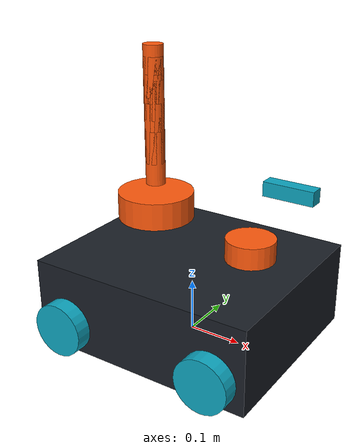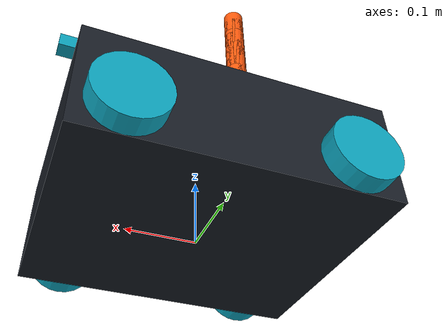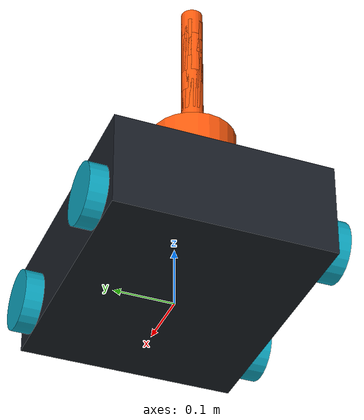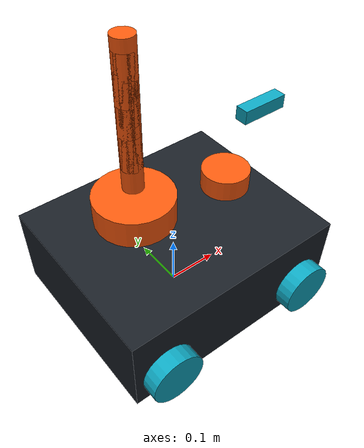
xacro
<?xml version="1.0"?>
<robot xmlns:xacro="http://www.ros.org/wiki/xacro" name="escape_robot">
  <!-- Nominal envelope only. Replace with measured dimensions before collision validation. -->
  <xacro:arg name="base_length" default="0.43"/>
  <xacro:arg name="base_width" default="0.36"/>
  <xacro:arg name="base_height" default="0.16"/>
  <xacro:arg name="wheel_radius" default="0.05"/>
  <xacro:arg name="wheel_width" default="0.04"/>
  <xacro:property name="base_length" value="$(arg base_length)"/>
  <xacro:property name="base_width" value="$(arg base_width)"/>
  <xacro:property name="base_height" value="$(arg base_height)"/>
  <xacro:property name="wheel_radius" value="$(arg wheel_radius)"/>
  <xacro:property name="wheel_width" value="$(arg wheel_width)"/>

  <material name="dark"><color rgba="0.10 0.12 0.15 1"/></material>
  <material name="cyan"><color rgba="0.05 0.65 0.75 1"/></material>
  <material name="orange"><color rgba="1.0 0.35 0.05 1"/></material>

  <link name="base_footprint"/>
  <joint name="base_footprint_joint" type="fixed">
    <parent link="base_footprint"/><child link="base_link"/>
    <origin xyz="0 0 ${base_height / 2.0}" rpy="0 0 0"/>
  </joint>

  <link name="base_link">
    <visual><geometry><box size="${base_length} ${base_width} ${base_height}"/></geometry><material name="dark"/></visual>
    <collision><geometry><box size="${base_length} ${base_width} ${base_height}"/></geometry></collision>
    <inertial><mass value="8.0"/><origin xyz="0 0 0"/><inertia ixx="0.10" ixy="0" ixz="0" iyy="0.14" iyz="0" izz="0.19"/></inertial>
  </link>

  <xacro:macro name="wheel" params="name x y">
    <link name="${name}_link">
      <visual><origin rpy="1.5708 0 0"/><geometry><cylinder radius="${wheel_radius}" length="${wheel_width}"/></geometry><material name="cyan"/></visual>
      <collision><origin rpy="1.5708 0 0"/><geometry><cylinder radius="${wheel_radius}" length="${wheel_width}"/></geometry></collision>
    </link>
    <joint name="${name}_joint" type="continuous">
      <parent link="base_link"/><child link="${name}_link"/>
      <origin xyz="${x} ${y} ${-base_height / 2.0 + wheel_radius}" rpy="0 0 0"/>
      <axis xyz="0 1 0"/>
    </joint>
  </xacro:macro>
  <xacro:wheel name="front_left_wheel" x="0.15" y="0.19"/>
  <xacro:wheel name="front_right_wheel" x="0.15" y="-0.19"/>
  <xacro:wheel name="rear_left_wheel" x="-0.15" y="0.19"/>
  <xacro:wheel name="rear_right_wheel" x="-0.15" y="-0.19"/>

  <link name="imu_link"/>
  <joint name="imu_joint" type="fixed"><parent link="base_link"/><child link="imu_link"/><origin xyz="0 0 0.05"/></joint>

  <link name="laser_link">
    <visual><geometry><cylinder radius="0.045" length="0.04"/></geometry><material name="orange"/></visual>
  </link>
  <joint name="laser_joint" type="fixed"><parent link="base_link"/><child link="laser_link"/><origin xyz="0.12 0 0.12"/></joint>

  <link name="camera_link">
    <visual><geometry><box size="0.09 0.025 0.025"/></geometry><material name="cyan"/></visual>
  </link>
  <joint name="camera_joint" type="fixed"><parent link="base_link"/><child link="camera_link"/><origin xyz="0.19 0 0.24"/></joint>
  <link name="camera_color_optical_frame"/>
  <joint name="camera_optical_joint" type="fixed">
    <parent link="camera_link"/><child link="camera_color_optical_frame"/>
    <origin xyz="0 0 0" rpy="-1.5708 0 -1.5708"/>
  </joint>

  <link name="arm_base_link"><visual><geometry><cylinder radius="0.07" length="0.05"/></geometry><material name="orange"/></visual></link>
  <joint name="arm_mount_joint" type="fixed"><parent link="base_link"/><child link="arm_base_link"/><origin xyz="-0.08 0 0.16"/></joint>

  <xacro:macro name="arm_segment" params="index parent length axis">
    <link name="arm_link_${index}">
      <visual><origin xyz="0 0 ${length / 2.0}"/><geometry><cylinder radius="0.018" length="${length}"/></geometry><material name="orange"/></visual>
      <collision><origin xyz="0 0 ${length / 2.0}"/><geometry><cylinder radius="0.022" length="${length}"/></geometry></collision>
    </link>
    <joint name="arm_joint_${index}" type="revolute">
      <parent link="${parent}"/><child link="arm_link_${index}"/><origin xyz="0 0 0.04"/><axis xyz="${axis}"/><limit lower="-1.5708" upper="1.5708" velocity="0.6" effort="5"/>
    </joint>
  </xacro:macro>
  <xacro:arm_segment index="1" parent="arm_base_link" length="0.10" axis="0 0 1"/>
  <xacro:arm_segment index="2" parent="arm_link_1" length="0.11" axis="0 1 0"/>
  <xacro:arm_segment index="3" parent="arm_link_2" length="0.11" axis="0 1 0"/>
  <xacro:arm_segment index="4" parent="arm_link_3" length="0.08" axis="1 0 0"/>
  <xacro:arm_segment index="5" parent="arm_link_4" length="0.07" axis="0 1 0"/>
  <xacro:arm_segment index="6" parent="arm_link_5" length="0.05" axis="1 0 0"/>
</robot>
